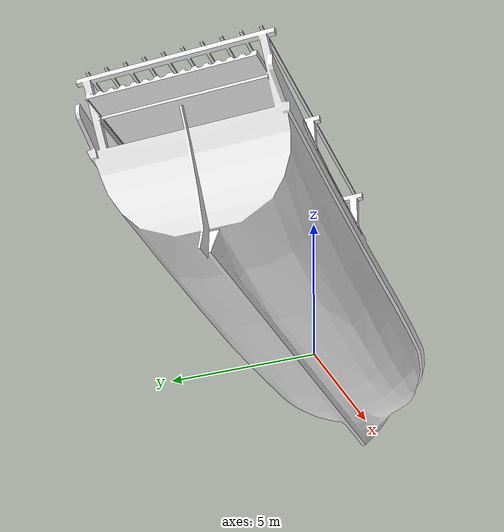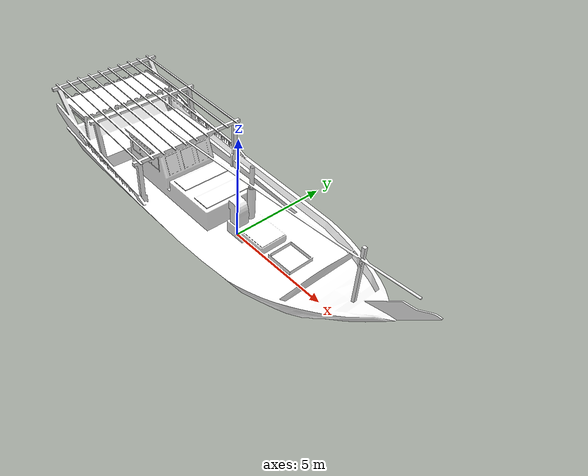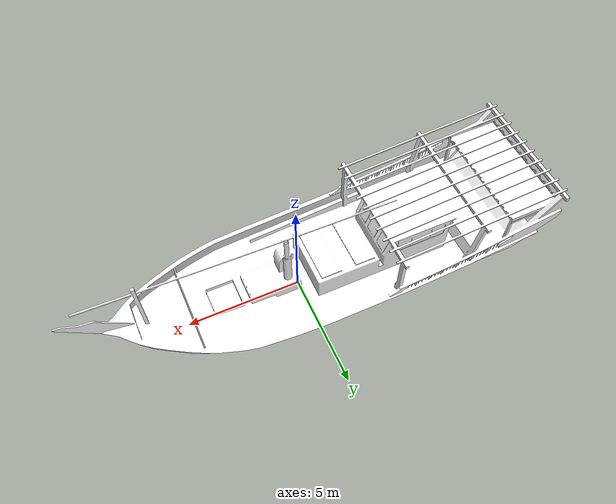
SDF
<?xml version='1.0' ?>
<sdf version="1.6">
  <model name="vessel_d">
    <static>false</static>
    <link name="link">
      <enable_wind>true</enable_wind>
      <kinematic>true</kinematic>
      <inertial>
        <mass>3000.0</mass>
        <inertia>
          <ixx>13000</ixx>
          <ixy>0.0</ixy>
          <ixz>0.0</ixz>
          <iyy>125000</iyy>
          <iyz>0.0</iyz>
          <izz>130000</izz>
        </inertia>
      </inertial>
      <visual name="visual">
        <pose>0 0 0 0 0 1.5708</pose>
        <geometry>
          <mesh>
            <uri>model://VesselD/meshes/Boat04.dae</uri>
            <scale>0.9 0.9 0.9</scale>
          </mesh>
        </geometry>
        <material>
          <diffuse>1.0 1.0 1.0</diffuse>
          <specular>1.0 1.0 1.0</specular>
          <script>
            <uri>model://VesselD/materials/scripts</uri>
            <uri>model://VesselD/materials/textures</uri>
            <name>VesselD/tex</name>
          </script>
        </material>
      </visual>
      <collision name="collision">
        <pose>0 0 0 0 0 1.5708</pose>
        <geometry>
          <mesh>
            <uri>model://VesselD/meshes/Boat04.dae</uri>
            <scale>0.9 0.9 0.9</scale>
          </mesh>
        </geometry>
      </collision>
    </link>
  </model>
</sdf>
